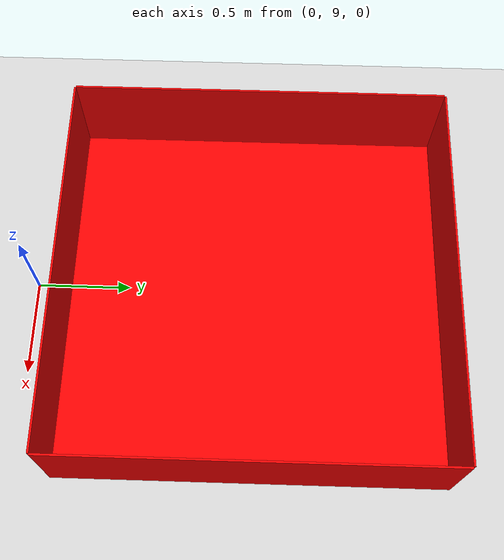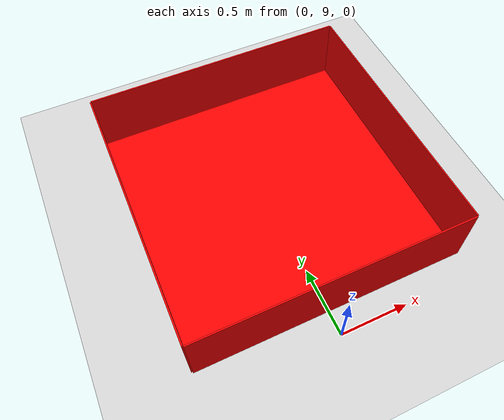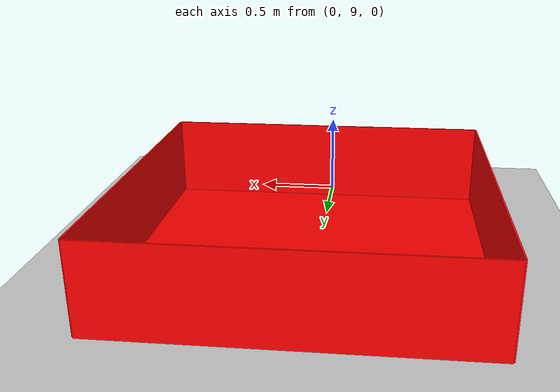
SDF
<sdf version="1.10">
 <world name="betterpool">
  <physics type="ode">
   <max_step_size>0.0040000000000000001</max_step_size>
   <real_time_factor>1</real_time_factor>
   <real_time_update_rate>250</real_time_update_rate>
  </physics>
  <gravity>0 0 -9.8000000000000007</gravity>
  <magnetic_field>6.0000000000000002e-06 2.3e-05 -4.1999999999999998e-05</magnetic_field>
  <atmosphere type="adiabatic"/>
  <scene>
   <grid>false</grid>
   <ambient>0.400000006 0.400000006 0.400000006 1</ambient>
   <background>0.699999988 0.699999988 0.699999988 1</background>
   <shadows>true</shadows>
  </scene>
  <wind><linear_velocity>5 2 0</linear_velocity></wind>
  <spherical_coordinates>
   <surface_model>EARTH_WGS84</surface_model>
   <world_frame_orientation>ENU</world_frame_orientation>
   <latitude_deg>47.397971057728974</latitude_deg>
   <longitude_deg>8.5461637398001464</longitude_deg>
   <elevation>0</elevation>
   <heading_deg>0</heading_deg>
  </spherical_coordinates>
  <model name="ground_plane">
   <static>true</static>
   <link name="link">
    <collision name="collision">
     <geometry><plane><normal>0 0 1</normal><size>1 1</size></plane></geometry>
    </collision>
    <visual name="visual">
     <geometry><plane><normal>0 0 1</normal><size>100 100</size></plane></geometry>
     <material>
      <ambient>0.800000012 0.800000012 0.800000012 1</ambient>
      <diffuse>0.800000012 0.800000012 0.800000012 1</diffuse>
      <specular>0.800000012 0.800000012 0.800000012 1</specular>
     </material>
    </visual>
    <inertial>
     <mass>1</mass>
     <inertia><ixx>1</ixx><ixy>0</ixy><ixz>0</ixz><iyy>1</iyy><iyz>0</iyz><izz>1</izz></inertia>
    </inertial>
    <enable_wind>true</enable_wind>
   </link>
  </model>
  <include>
   <uri>file:///home/krzychu/PX4-Autopilot/Tools/simulation/gz/models/basement tank</uri>
   <name>basin_model</name>
   <pose>0.039213098585605621 10.183681488037109 -8.4910559392173396e-07 6.2413337857348932e-20 3.2644900388319733e-19 8.1146300275848937e-25</pose>
  </include>
  <light name="sunUTC" type="directional">
   <pose>0 0 500 0 0 0</pose>
   <intensity>1</intensity>
   <direction>0.001 0.625 -0.78000000000000003</direction>
   <diffuse>0.903999984 0.903999984 0.903999984 1</diffuse>
   <specular>0.270999998 0.270999998 0.270999998 1</specular>
   <attenuation><range>2000</range><linear>0</linear><constant>1</constant><quadratic>0</quadratic></attenuation>
   <spot><inner_angle>0</inner_angle><outer_angle>0</outer_angle><falloff>0</falloff></spot>
  </light>
 </world>
</sdf>

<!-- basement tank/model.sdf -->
<sdf version="1.6">
  <model name="basin_model">
    <link name="basin">
      <inertial>
        <mass>1</mass>
      </inertial>

      <!-- Dno: cienki prostokąt o wymiarach 2.0 x 2.0 m -->
      <collision name="bottom">
        <pose>0 0 0.005 0 0 0</pose>
        <geometry>
          <box>
            <size>2.0 2.0 0.01</size>
          </box>
        </geometry>
      </collision>
      <visual name="bottom_visual">
        <pose>0 0 0.005 0 0 0</pose>
        <geometry>
          <box>
            <size>2.0 2.0 0.01</size>
          </box>
        </geometry>
        <material>
          <!--czerwony kolor-->
          <ambient>1 0 0 1</ambient>
          <diffuse>1 0 0 1</diffuse>
        </material>
      </visual>

      <!-- Lewy bok -->
      <collision name="left_side">
        <!-- Pozycja: X = -1.005 (po lewej krawędzi), Y = 0, Z = 0.255 (środek wysokości: 0.5/2 + dno) -->
        <pose>-1.005 0 0.255 0 0 0</pose>
        <geometry>
          <box>
            <size>0.01 2.0 0.5</size>
          </box>
        </geometry>
      </collision>
      <visual name="left_side_visual">
        <pose>-1.005 0 0.255 0 0 0</pose>
        <geometry>
          <box>
            <size>0.01 2.0 0.5</size>
          </box>
        </geometry>
        <material>
          <ambient>1 0 0 1</ambient>
          <diffuse>1 0 0 1</diffuse>
        </material>
      </visual>

      <!-- Prawy bok -->
      <collision name="right_side">
        <pose>1.005 0 0.255 0 0 0</pose>
        <geometry>
          <box>
            <size>0.01 2.0 0.5</size>
          </box>
        </geometry>
      </collision>
      <visual name="right_side_visual">
        <pose>1.005 0 0.255 0 0 0</pose>
        <geometry>
          <box>
            <size>0.01 2.0 0.5</size>
          </box>
        </geometry>
        <material>
          <ambient>1 0 0 1</ambient>
          <diffuse>1 0 0 1</diffuse>
        </material>
      </visual>

      <!-- Przedni bok -->
      <collision name="front_side">
        <pose>0 -1.005 0.255 0 0 0</pose>
        <geometry>
          <box>
            <size>2.0 0.01 0.5</size>
          </box>
        </geometry>
      </collision>
      <visual name="front_side_visual">
        <pose>0 -1.005 0.255 0 0 0</pose>
        <geometry>
          <box>
            <size>2.0 0.01 0.5</size>
          </box>
        </geometry>
        <material>
          <ambient>1 0 0 1</ambient>
          <diffuse>1 0 0 1</diffuse>
        </material>
      </visual>

      <!-- Tylny bok -->
      <collision name="back_side">
        <pose>0 1.005 0.255 0 0 0</pose>
        <geometry>
          <box>
            <size>2.0 0.01 0.5</size>
          </box>
        </geometry>
      </collision>
      <visual name="back_side_visual">
        <pose>0 1.005 0.255 0 0 0</pose>
        <geometry>
          <box>
            <size>2.0 0.01 0.5</size>
          </box>
        </geometry>
        <material>
          <ambient>1 0 0 1</ambient>
          <diffuse>1 0 0 1</diffuse>
        </material>
      </visual>

    </link>
  </model>
</sdf>
